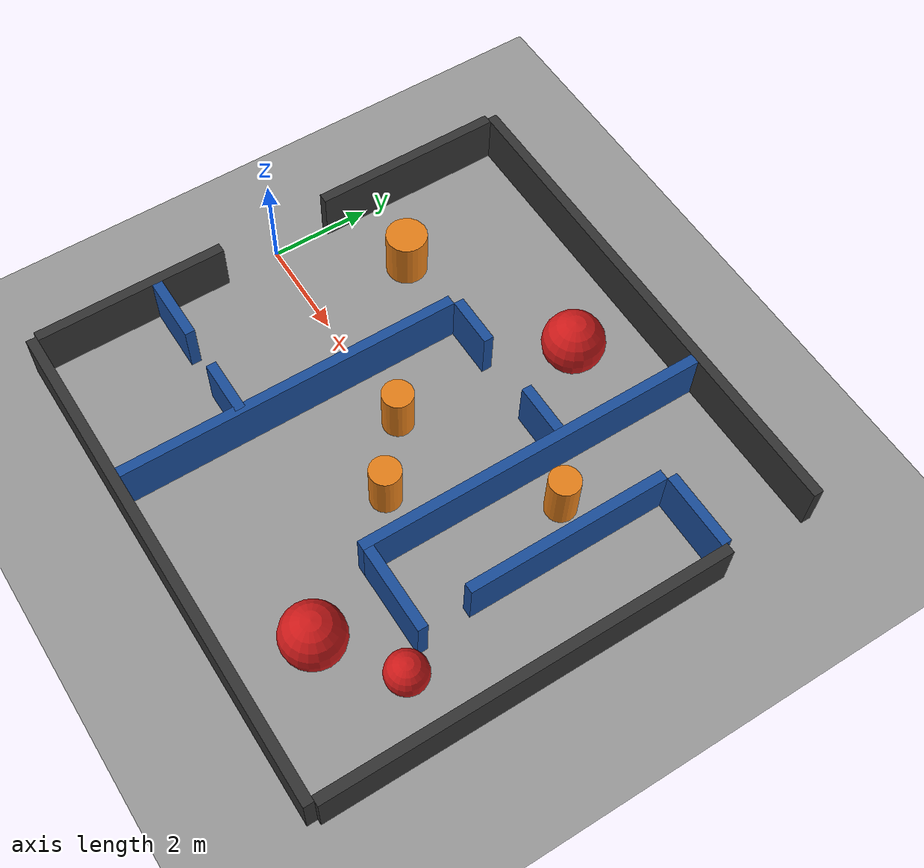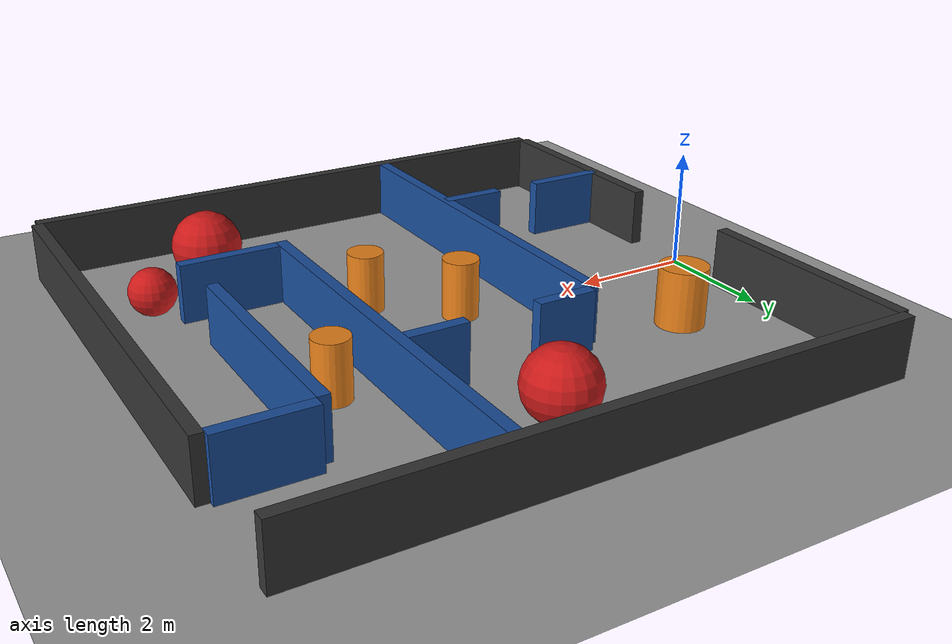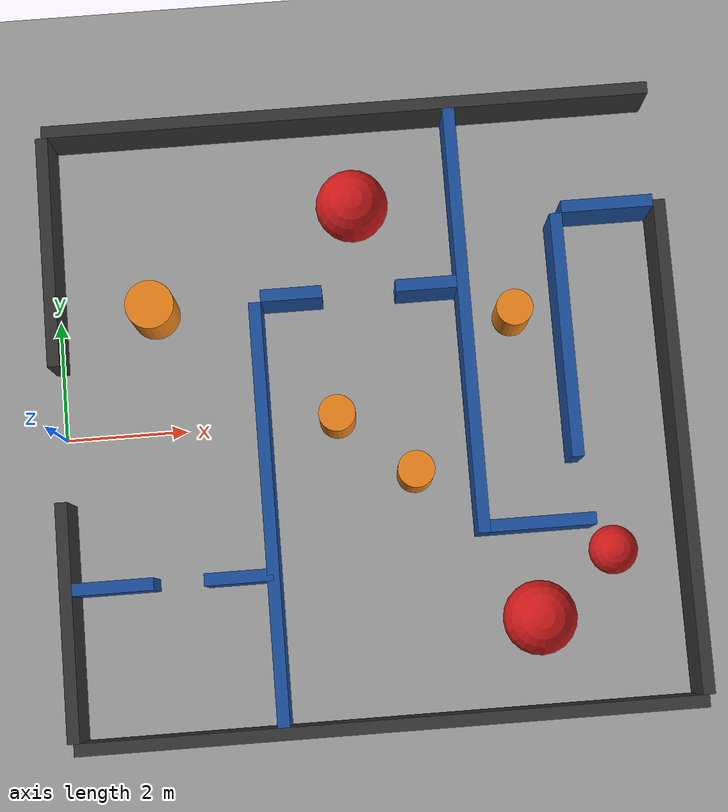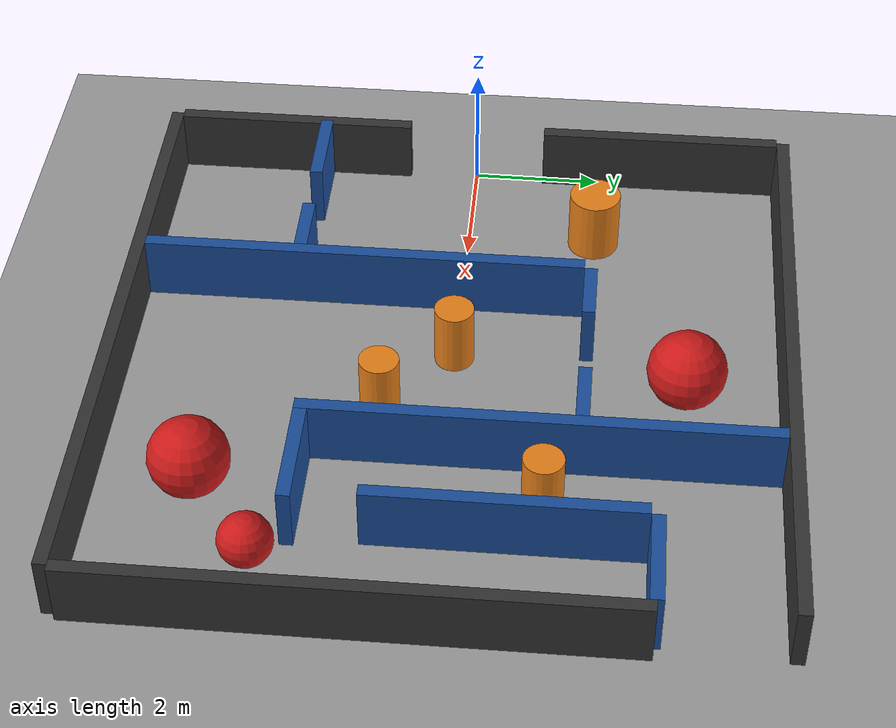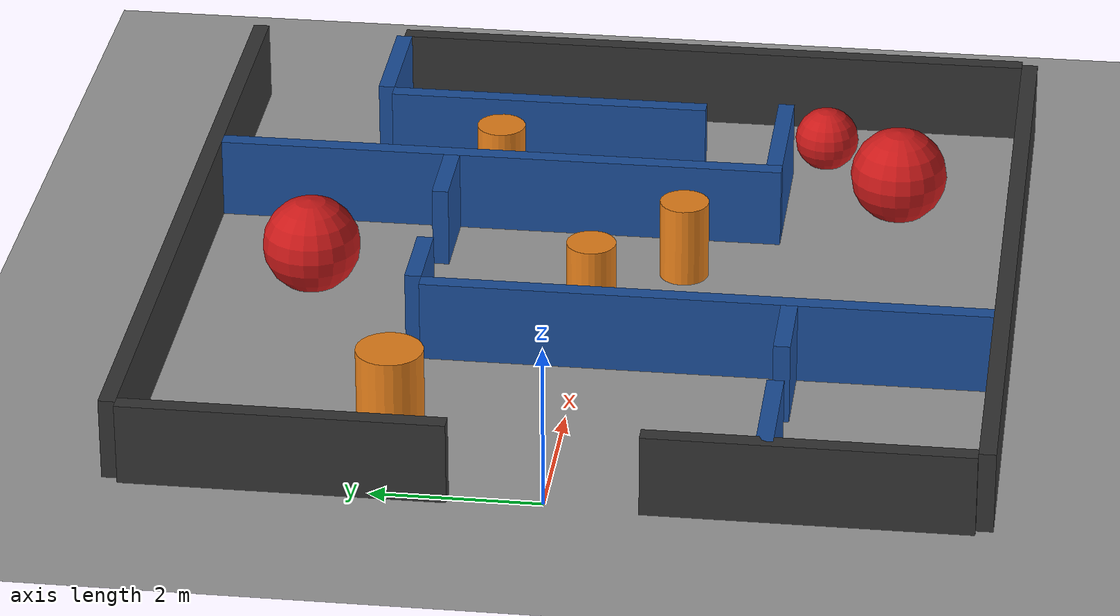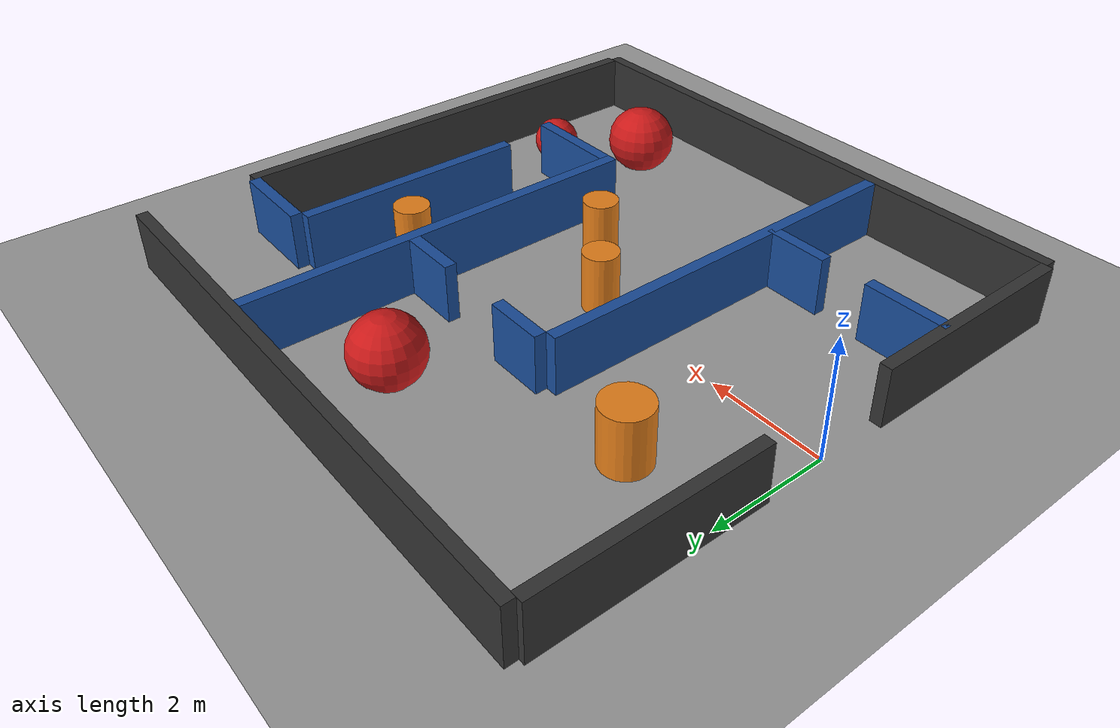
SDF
<?xml version="1.0" ?>
<sdf version="1.8">
  <world name="pista_robot">
    <plugin filename="gz-sim-physics-system" name="gz::sim::systems::Physics"/>
    <plugin filename="gz-sim-scene-broadcaster-system" name="gz::sim::systems::SceneBroadcaster"/>
    <plugin filename="gz-sim-user-commands-system" name="gz::sim::systems::UserCommands"/>
    <plugin filename="gz-sim-sensors-system" name="gz::sim::systems::Sensors">
      <render_engine>ogre2</render_engine>
    </plugin>

    <gui fullscreen="0">
      <plugin filename="MinimalScene" name="3D View">
        <gz-gui>
          <property type="string" key="state">docked</property>
        </gz-gui>
        <engine>ogre2</engine>
        <scene>scene</scene>
        <camera_pose>5 -6 12 0 0.8 1.57</camera_pose>
      </plugin>
      <plugin filename="EntityTree" name="Entity tree"/>
      <plugin filename="GzSceneManager" name="Scene Manager"/>
      <plugin filename="InteractiveViewControl" name="Interactive view control"/>
    </gui>

    <scene>
      <ambient>1.0 1.0 1.0 1</ambient>
      <background>0.7 0.8 0.9 1</background>
    </scene>

    <light type="directional" name="sun">
      <cast_shadows>true</cast_shadows>
      <pose>0 0 10 0 0 0</pose>
      <diffuse>0.9 0.9 0.9 1</diffuse>
      <specular>0.2 0.2 0.2 1</specular>
      <direction>-0.5 0.1 -0.9</direction>
    </light>

    <model name="ground_plane">
      <static>true</static>
      <link name="link">
        <collision name="collision"><geometry><plane><normal>0 0 1</normal><size>100 100</size></plane></geometry></collision>
        <visual name="visual">
          <geometry><plane><normal>0 0 1</normal><size>100 100</size></plane></geometry>
          <material><ambient>0.6 0.6 0.6 1</ambient><diffuse>0.6 0.6 0.6 1</diffuse></material>
        </visual>
      </link>
    </model>

    <!-- ================= PAREDES EXTERIORES ================= -->
    <model name="muro_norte">
      <static>true</static><pose>5 5 0.5 0 0 0</pose>
      <link name="link"><collision name="collision"><geometry><box><size>10 0.2 1</size></box></geometry></collision><visual name="visual"><geometry><box><size>10 0.2 1</size></box></geometry><material><ambient>0.2 0.2 0.2 1</ambient><diffuse>0.2 0.2 0.2 1</diffuse></material></visual></link>
    </model>

    <model name="muro_sur">
      <static>true</static><pose>5 -5 0.5 0 0 0</pose>
      <link name="link"><collision name="collision"><geometry><box><size>10 0.2 1</size></box></geometry></collision><visual name="visual"><geometry><box><size>10 0.2 1</size></box></geometry><material><ambient>0.2 0.2 0.2 1</ambient><diffuse>0.2 0.2 0.2 1</diffuse></material></visual></link>
    </model>

    <model name="muro_oeste_arriba">
      <static>true</static><pose>0 3 0.5 0 0 0</pose>
      <link name="link"><collision name="collision"><geometry><box><size>0.2 3.8 1</size></box></geometry></collision><visual name="visual"><geometry><box><size>0.2 3.8 1</size></box></geometry><material><ambient>0.2 0.2 0.2 1</ambient><diffuse>0.2 0.2 0.2 1</diffuse></material></visual></link>
    </model>

    <model name="muro_oeste_abajo">
      <static>true</static><pose>0 -3 0.5 0 0 0</pose>
      <link name="link"><collision name="collision"><geometry><box><size>0.2 3.8 1</size></box></geometry></collision><visual name="visual"><geometry><box><size>0.2 3.8 1</size></box></geometry><material><ambient>0.2 0.2 0.2 1</ambient><diffuse>0.2 0.2 0.2 1</diffuse></material></visual></link>
    </model>

    <model name="muro_este_abajo">
      <static>true</static><pose>10 -0.9 0.5 0 0 0</pose>
      <link name="link"><collision name="collision"><geometry><box><size>0.2 8.0 1</size></box></geometry></collision><visual name="visual"><geometry><box><size>0.2 8.0 1</size></box></geometry><material><ambient>0.2 0.2 0.2 1</ambient><diffuse>0.2 0.2 0.2 1</diffuse></material></visual></link>
    </model>

    <!-- ================= PAREDES INTERNAS ================= -->
    <model name="muro_interno_1">
      <static>true</static><pose>3.3 -1.5 0.5 0 0 0</pose>
      <link name="link"><collision name="collision"><geometry><box><size>0.2 6.8 1</size></box></geometry></collision><visual name="visual"><geometry><box><size>0.2 6.8 1</size></box></geometry><material><ambient>0.1 0.3 0.6 1</ambient><diffuse>0.1 0.3 0.6 1</diffuse></material></visual></link>
    </model>

    <model name="muro_interno_2a">
      <static>true</static><pose>3.9 2.0 0.5 0 0 0</pose>
      <link name="link"><collision name="collision"><geometry><box><size>1.0 0.2 1</size></box></geometry></collision><visual name="visual"><geometry><box><size>1.0 0.2 1</size></box></geometry><material><ambient>0.1 0.3 0.6 1</ambient><diffuse>0.1 0.3 0.6 1</diffuse></material></visual></link>
    </model>

    <model name="muro_interno_2b">
      <static>true</static><pose>6.1 2.0 0.5 0 0 0</pose>
      <link name="link"><collision name="collision"><geometry><box><size>1.0 0.2 1</size></box></geometry></collision><visual name="visual"><geometry><box><size>1.0 0.2 1</size></box></geometry><material><ambient>0.1 0.3 0.6 1</ambient><diffuse>0.1 0.3 0.6 1</diffuse></material></visual></link>
    </model>

    <model name="muro_interno_3">
      <static>true</static><pose>6.7 1.4 0.5 0 0 0</pose>
      <link name="link"><collision name="collision"><geometry><box><size>0.2 7.0 1</size></box></geometry></collision><visual name="visual"><geometry><box><size>0.2 7.0 1</size></box></geometry><material><ambient>0.1 0.3 0.6 1</ambient><diffuse>0.1 0.3 0.6 1</diffuse></material></visual></link>
    </model>

    <model name="muro_interno_4">
      <static>true</static><pose>7.65 -2.0 0.5 0 0 0</pose>
      <link name="link"><collision name="collision"><geometry><box><size>1.7 0.2 1</size></box></geometry></collision><visual name="visual"><geometry><box><size>1.7 0.2 1</size></box></geometry><material><ambient>0.1 0.3 0.6 1</ambient><diffuse>0.1 0.3 0.6 1</diffuse></material></visual></link>
    </model>

    <!-- ================= LA TRAMPA DEL INICIO (Cuarto Falso) ================= -->
    <model name="muro_falso_inicio_a">
      <static>true</static><pose>0.7 -2.5 0.5 0 0 0</pose>
      <link name="link"><collision name="collision"><geometry><box><size>1.4 0.2 1</size></box></geometry></collision><visual name="visual"><geometry><box><size>1.4 0.2 1</size></box></geometry><material><ambient>0.1 0.3 0.6 1</ambient><diffuse>0.1 0.3 0.6 1</diffuse></material></visual></link>
    </model>

    <model name="muro_falso_inicio_b">
      <static>true</static><pose>2.75 -2.5 0.5 0 0 0</pose>
      <link name="link"><collision name="collision"><geometry><box><size>1.1 0.2 1</size></box></geometry></collision><visual name="visual"><geometry><box><size>1.1 0.2 1</size></box></geometry><material><ambient>0.1 0.3 0.6 1</ambient><diffuse>0.1 0.3 0.6 1</diffuse></material></visual></link>
    </model>

    <!-- ================= LA TRAMPA FINAL ================= -->
    <model name="muro_trampa_vertical">
      <static>true</static><pose>8.3 1.0 0.5 0 0 0</pose>
      <link name="link"><collision name="collision"><geometry><box><size>0.2 4.0 1</size></box></geometry></collision><visual name="visual"><geometry><box><size>0.2 4.0 1</size></box></geometry><material><ambient>0.1 0.3 0.6 1</ambient><diffuse>0.1 0.3 0.6 1</diffuse></material></visual></link>
    </model>

    <model name="muro_trampa_horizontal">
      <static>true</static><pose>9.15 3.1 0.5 0 0 0</pose>
      <link name="link"><collision name="collision"><geometry><box><size>1.5 0.2 1</size></box></geometry></collision><visual name="visual"><geometry><box><size>1.5 0.2 1</size></box></geometry><material><ambient>0.1 0.3 0.6 1</ambient><diffuse>0.1 0.3 0.6 1</diffuse></material></visual></link>
    </model>

    <!-- ================= OBSTÁCULOS ================= -->
    <model name="obstaculo_cilindro_1">
      <static>true</static><pose>1.6 2.0 0.5 0 0 0</pose>
      <link name="link"><collision name="collision"><geometry><cylinder><radius>0.4</radius><length>1.0</length></cylinder></geometry></collision><visual name="visual"><geometry><cylinder><radius>0.4</radius><length>1.0</length></cylinder></geometry><material><ambient>0.9 0.5 0.1 1</ambient><diffuse>0.9 0.5 0.1 1</diffuse></material></visual></link>
    </model>

    <model name="obstaculo_esfera_1">
      <static>true</static><pose>5.0 3.5 0.5 0 0 0</pose>
      <link name="link"><collision name="collision"><geometry><sphere><radius>0.6</radius></sphere></geometry></collision><visual name="visual"><geometry><sphere><radius>0.6</radius></sphere></geometry><material><ambient>0.8 0.1 0.1 1</ambient><diffuse>0.8 0.1 0.1 1</diffuse></material></visual></link>
    </model>

    <model name="obstaculo_cilindro_2">
      <static>true</static><pose>4.5 0.0 0.5 0 0 0</pose>
      <link name="link"><collision name="collision"><geometry><cylinder><radius>0.3</radius><length>1.0</length></cylinder></geometry></collision><visual name="visual"><geometry><cylinder><radius>0.3</radius><length>1.0</length></cylinder></geometry><material><ambient>0.9 0.5 0.1 1</ambient><diffuse>0.9 0.5 0.1 1</diffuse></material></visual></link>
    </model>

    <model name="obstaculo_cilindro_3">
      <static>true</static><pose>5.7 -1.0 0.5 0 0 0</pose>
      <link name="link"><collision name="collision"><geometry><cylinder><radius>0.3</radius><length>1.0</length></cylinder></geometry></collision><visual name="visual"><geometry><cylinder><radius>0.3</radius><length>1.0</length></cylinder></geometry><material><ambient>0.9 0.5 0.1 1</ambient><diffuse>0.9 0.5 0.1 1</diffuse></material></visual></link>
    </model>

    <model name="obstaculo_esfera_2">
      <static>true</static><pose>7.5 -3.5 0.6 0 0 0</pose>
      <link name="link"><collision name="collision"><geometry><sphere><radius>0.6</radius></sphere></geometry></collision><visual name="visual"><geometry><sphere><radius>0.6</radius></sphere></geometry><material><ambient>0.8 0.1 0.1 1</ambient><diffuse>0.8 0.1 0.1 1</diffuse></material></visual></link>
    </model>

    <model name="obstaculo_esfera_3">
      <static>true</static><pose>8.8 -2.5 0.4 0 0 0</pose>
      <link name="link"><collision name="collision"><geometry><sphere><radius>0.4</radius></sphere></geometry></collision><visual name="visual"><geometry><sphere><radius>0.4</radius></sphere></geometry><material><ambient>0.8 0.1 0.1 1</ambient><diffuse>0.8 0.1 0.1 1</diffuse></material></visual></link>
    </model>

    <model name="obstaculo_cilindro_4">
      <static>true</static><pose>7.5 1.5 0.5 0 0 0</pose>
      <link name="link"><collision name="collision"><geometry><cylinder><radius>0.3</radius><length>1.0</length></cylinder></geometry></collision><visual name="visual"><geometry><cylinder><radius>0.3</radius><length>1.0</length></cylinder></geometry><material><ambient>0.9 0.5 0.1 1</ambient><diffuse>0.9 0.5 0.1 1</diffuse></material></visual></link>
    </model>
  </world>
</sdf>
